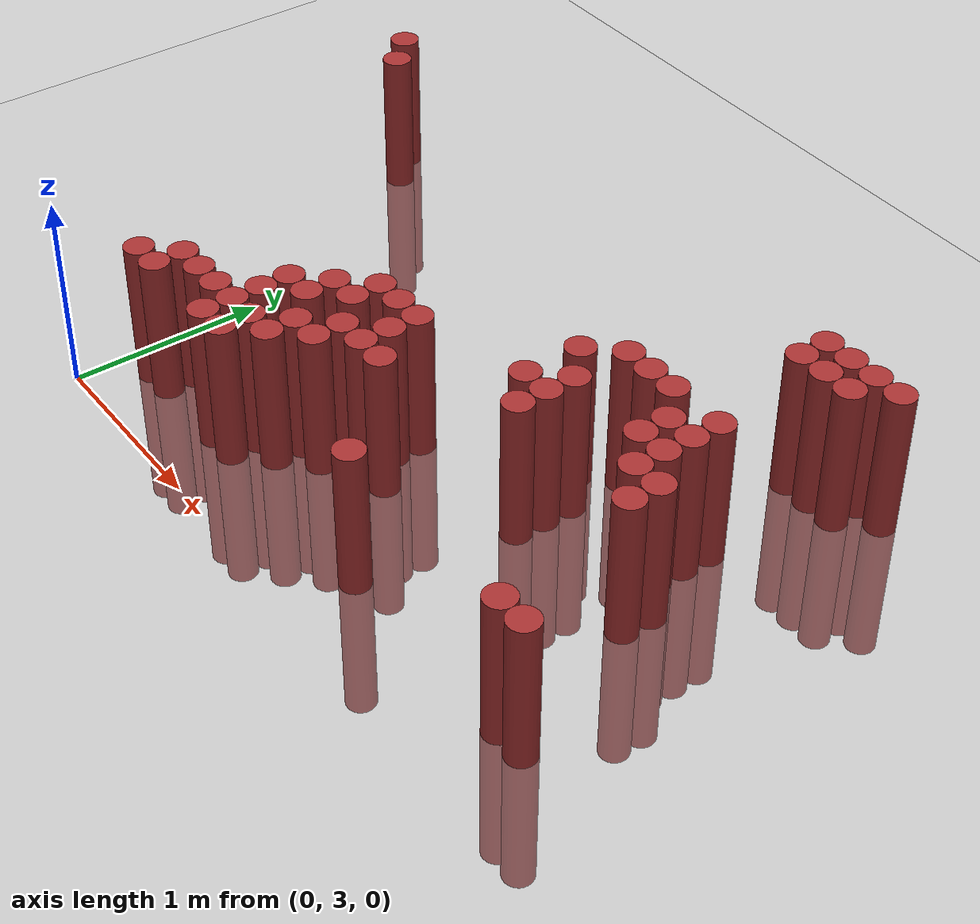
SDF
<sdf version="1.6">
 <world name="default">
  <model name="ground_plane">
   <static>1</static>
   <link name="link">
    <collision name="collision">
     <geometry><plane><normal>0 0 1</normal><size>100 100</size></plane></geometry>
     <surface><friction><ode><mu>100</mu><mu2>50</mu2></ode></friction></surface>
    </collision>
    <visual name="visual">
     <cast_shadows>0</cast_shadows>
     <geometry><plane><normal>0 0 1</normal><size>100 100</size></plane></geometry>
     <material>
      <script><uri>file://media/materials/scripts/gazebo.material</uri><name>Gazebo/Grey</name></script>
     </material>
    </visual>
   </link>
  </model>
  <model name="unit_cylinder_385">
   <static>1</static>
   <pose>-0.725000 5.425000 0.000000 0.000000 0.000000 0.000000</pose>
   <link name="link">
    <inertial>
     <mass>1</mass>
     <inertia><ixx>0.145833</ixx><ixy>0</ixy><ixz>0</ixz><iyy>0.145833</iyy><iyz>0</iyz><izz>0.125</izz></inertia>
    </inertial>
    <collision name="collision">
     <geometry><cylinder><radius>0.075000</radius><length>1.5</length></cylinder></geometry>
    </collision>
    <visual name="visual">
     <geometry><cylinder><radius>0.075000</radius><length>1.5</length></cylinder></geometry>
     <material>
      <ambient>0.648000 0.192000 0.192000 1</ambient>
      <diffuse>0.648000 0.192000 0.192000 1</diffuse>
     </material>
     <material>
      <script><name>Gazebo/Grey</name><uri>file://media/materials/scripts/gazebo.material</uri></script>
     </material>
    </visual>
   </link>
  </model>
  <model name="unit_cylinder_386">
   <static>1</static>
   <pose>-0.575000 5.275000 0.000000 0.000000 0.000000 0.000000</pose>
   <link name="link">
    <inertial>
     <mass>1</mass>
     <inertia><ixx>0.145833</ixx><ixy>0</ixy><ixz>0</ixz><iyy>0.145833</iyy><iyz>0</iyz><izz>0.125</izz></inertia>
    </inertial>
    <collision name="collision">
     <geometry><cylinder><radius>0.075000</radius><length>1.5</length></cylinder></geometry>
    </collision>
    <visual name="visual">
     <geometry><cylinder><radius>0.075000</radius><length>1.5</length></cylinder></geometry>
     <material>
      <ambient>0.648000 0.192000 0.192000 1</ambient>
      <diffuse>0.648000 0.192000 0.192000 1</diffuse>
     </material>
     <material>
      <script><name>Gazebo/Grey</name><uri>file://media/materials/scripts/gazebo.material</uri></script>
     </material>
    </visual>
   </link>
  </model>
  <model name="unit_cylinder_403">
   <static>1</static>
   <pose>0.175000 3.325000 0.000000 0.000000 0.000000 0.000000</pose>
   <link name="link">
    <inertial>
     <mass>1</mass>
     <inertia><ixx>0.145833</ixx><ixy>0</ixy><ixz>0</ixz><iyy>0.145833</iyy><iyz>0</iyz><izz>0.125</izz></inertia>
    </inertial>
    <collision name="collision">
     <geometry><cylinder><radius>0.075000</radius><length>1.5</length></cylinder></geometry>
    </collision>
    <visual name="visual">
     <geometry><cylinder><radius>0.075000</radius><length>1.5</length></cylinder></geometry>
     <material>
      <ambient>0.648000 0.192000 0.192000 1</ambient>
      <diffuse>0.648000 0.192000 0.192000 1</diffuse>
     </material>
     <material>
      <script><name>Gazebo/Grey</name><uri>file://media/materials/scripts/gazebo.material</uri></script>
     </material>
    </visual>
   </link>
  </model>
  <model name="unit_cylinder_407">
   <static>1</static>
   <pose>0.325000 3.325000 0.000000 0.000000 0.000000 0.000000</pose>
   <link name="link">
    <inertial>
     <mass>1</mass>
     <inertia><ixx>0.145833</ixx><ixy>0</ixy><ixz>0</ixz><iyy>0.145833</iyy><iyz>0</iyz><izz>0.125</izz></inertia>
    </inertial>
    <collision name="collision">
     <geometry><cylinder><radius>0.075000</radius><length>1.5</length></cylinder></geometry>
    </collision>
    <visual name="visual">
     <geometry><cylinder><radius>0.075000</radius><length>1.5</length></cylinder></geometry>
     <material>
      <ambient>0.648000 0.192000 0.192000 1</ambient>
      <diffuse>0.648000 0.192000 0.192000 1</diffuse>
     </material>
     <material>
      <script><name>Gazebo/Grey</name><uri>file://media/materials/scripts/gazebo.material</uri></script>
     </material>
    </visual>
   </link>
  </model>
  <model name="unit_cylinder_408">
   <static>1</static>
   <pose>0.325000 3.475000 0.000000 0.000000 0.000000 0.000000</pose>
   <link name="link">
    <inertial>
     <mass>1</mass>
     <inertia><ixx>0.145833</ixx><ixy>0</ixy><ixz>0</ixz><iyy>0.145833</iyy><iyz>0</iyz><izz>0.125</izz></inertia>
    </inertial>
    <collision name="collision">
     <geometry><cylinder><radius>0.075000</radius><length>1.5</length></cylinder></geometry>
    </collision>
    <visual name="visual">
     <geometry><cylinder><radius>0.075000</radius><length>1.5</length></cylinder></geometry>
     <material>
      <ambient>0.648000 0.192000 0.192000 1</ambient>
      <diffuse>0.648000 0.192000 0.192000 1</diffuse>
     </material>
     <material>
      <script><name>Gazebo/Grey</name><uri>file://media/materials/scripts/gazebo.material</uri></script>
     </material>
    </visual>
   </link>
  </model>
  <model name="unit_cylinder_413">
   <static>1</static>
   <pose>0.475000 3.475000 0.000000 0.000000 0.000000 0.000000</pose>
   <link name="link">
    <inertial>
     <mass>1</mass>
     <inertia><ixx>0.145833</ixx><ixy>0</ixy><ixz>0</ixz><iyy>0.145833</iyy><iyz>0</iyz><izz>0.125</izz></inertia>
    </inertial>
    <collision name="collision">
     <geometry><cylinder><radius>0.075000</radius><length>1.5</length></cylinder></geometry>
    </collision>
    <visual name="visual">
     <geometry><cylinder><radius>0.075000</radius><length>1.5</length></cylinder></geometry>
     <material>
      <ambient>0.648000 0.192000 0.192000 1</ambient>
      <diffuse>0.648000 0.192000 0.192000 1</diffuse>
     </material>
     <material>
      <script><name>Gazebo/Grey</name><uri>file://media/materials/scripts/gazebo.material</uri></script>
     </material>
    </visual>
   </link>
  </model>
  <model name="unit_cylinder_420">
   <static>1</static>
   <pose>0.625000 3.475000 0.000000 0.000000 0.000000 0.000000</pose>
   <link name="link">
    <inertial>
     <mass>1</mass>
     <inertia><ixx>0.145833</ixx><ixy>0</ixy><ixz>0</ixz><iyy>0.145833</iyy><iyz>0</iyz><izz>0.125</izz></inertia>
    </inertial>
    <collision name="collision">
     <geometry><cylinder><radius>0.075000</radius><length>1.5</length></cylinder></geometry>
    </collision>
    <visual name="visual">
     <geometry><cylinder><radius>0.075000</radius><length>1.5</length></cylinder></geometry>
     <material>
      <ambient>0.648000 0.192000 0.192000 1</ambient>
      <diffuse>0.648000 0.192000 0.192000 1</diffuse>
     </material>
     <material>
      <script><name>Gazebo/Grey</name><uri>file://media/materials/scripts/gazebo.material</uri></script>
     </material>
    </visual>
   </link>
  </model>
  <model name="unit_cylinder_429">
   <static>1</static>
   <pose>0.775000 3.325000 0.000000 0.000000 0.000000 0.000000</pose>
   <link name="link">
    <inertial>
     <mass>1</mass>
     <inertia><ixx>0.145833</ixx><ixy>0</ixy><ixz>0</ixz><iyy>0.145833</iyy><iyz>0</iyz><izz>0.125</izz></inertia>
    </inertial>
    <collision name="collision">
     <geometry><cylinder><radius>0.075000</radius><length>1.5</length></cylinder></geometry>
    </collision>
    <visual name="visual">
     <geometry><cylinder><radius>0.075000</radius><length>1.5</length></cylinder></geometry>
     <material>
      <ambient>0.648000 0.192000 0.192000 1</ambient>
      <diffuse>0.648000 0.192000 0.192000 1</diffuse>
     </material>
     <material>
      <script><name>Gazebo/Grey</name><uri>file://media/materials/scripts/gazebo.material</uri></script>
     </material>
    </visual>
   </link>
  </model>
  <model name="unit_cylinder_430">
   <static>1</static>
   <pose>0.775000 3.475000 0.000000 0.000000 0.000000 0.000000</pose>
   <link name="link">
    <inertial>
     <mass>1</mass>
     <inertia><ixx>0.145833</ixx><ixy>0</ixy><ixz>0</ixz><iyy>0.145833</iyy><iyz>0</iyz><izz>0.125</izz></inertia>
    </inertial>
    <collision name="collision">
     <geometry><cylinder><radius>0.075000</radius><length>1.5</length></cylinder></geometry>
    </collision>
    <visual name="visual">
     <geometry><cylinder><radius>0.075000</radius><length>1.5</length></cylinder></geometry>
     <material>
      <ambient>0.648000 0.192000 0.192000 1</ambient>
      <diffuse>0.648000 0.192000 0.192000 1</diffuse>
     </material>
     <material>
      <script><name>Gazebo/Grey</name><uri>file://media/materials/scripts/gazebo.material</uri></script>
     </material>
    </visual>
   </link>
  </model>
  <model name="unit_cylinder_431">
   <static>1</static>
   <pose>0.775000 3.625000 0.000000 0.000000 0.000000 0.000000</pose>
   <link name="link">
    <inertial>
     <mass>1</mass>
     <inertia><ixx>0.145833</ixx><ixy>0</ixy><ixz>0</ixz><iyy>0.145833</iyy><iyz>0</iyz><izz>0.125</izz></inertia>
    </inertial>
    <collision name="collision">
     <geometry><cylinder><radius>0.075000</radius><length>1.5</length></cylinder></geometry>
    </collision>
    <visual name="visual">
     <geometry><cylinder><radius>0.075000</radius><length>1.5</length></cylinder></geometry>
     <material>
      <ambient>0.648000 0.192000 0.192000 1</ambient>
      <diffuse>0.648000 0.192000 0.192000 1</diffuse>
     </material>
     <material>
      <script><name>Gazebo/Grey</name><uri>file://media/materials/scripts/gazebo.material</uri></script>
     </material>
    </visual>
   </link>
  </model>
  <model name="unit_cylinder_432">
   <static>1</static>
   <pose>0.775000 3.775000 0.000000 0.000000 0.000000 0.000000</pose>
   <link name="link">
    <inertial>
     <mass>1</mass>
     <inertia><ixx>0.145833</ixx><ixy>0</ixy><ixz>0</ixz><iyy>0.145833</iyy><iyz>0</iyz><izz>0.125</izz></inertia>
    </inertial>
    <collision name="collision">
     <geometry><cylinder><radius>0.075000</radius><length>1.5</length></cylinder></geometry>
    </collision>
    <visual name="visual">
     <geometry><cylinder><radius>0.075000</radius><length>1.5</length></cylinder></geometry>
     <material>
      <ambient>0.648000 0.192000 0.192000 1</ambient>
      <diffuse>0.648000 0.192000 0.192000 1</diffuse>
     </material>
     <material>
      <script><name>Gazebo/Grey</name><uri>file://media/materials/scripts/gazebo.material</uri></script>
     </material>
    </visual>
   </link>
  </model>
  <model name="unit_cylinder_440">
   <static>1</static>
   <pose>0.925000 3.325000 0.000000 0.000000 0.000000 0.000000</pose>
   <link name="link">
    <inertial>
     <mass>1</mass>
     <inertia><ixx>0.145833</ixx><ixy>0</ixy><ixz>0</ixz><iyy>0.145833</iyy><iyz>0</iyz><izz>0.125</izz></inertia>
    </inertial>
    <collision name="collision">
     <geometry><cylinder><radius>0.075000</radius><length>1.5</length></cylinder></geometry>
    </collision>
    <visual name="visual">
     <geometry><cylinder><radius>0.075000</radius><length>1.5</length></cylinder></geometry>
     <material>
      <ambient>0.648000 0.192000 0.192000 1</ambient>
      <diffuse>0.648000 0.192000 0.192000 1</diffuse>
     </material>
     <material>
      <script><name>Gazebo/Grey</name><uri>file://media/materials/scripts/gazebo.material</uri></script>
     </material>
    </visual>
   </link>
  </model>
  <model name="unit_cylinder_441">
   <static>1</static>
   <pose>0.925000 3.475000 0.000000 0.000000 0.000000 0.000000</pose>
   <link name="link">
    <inertial>
     <mass>1</mass>
     <inertia><ixx>0.145833</ixx><ixy>0</ixy><ixz>0</ixz><iyy>0.145833</iyy><iyz>0</iyz><izz>0.125</izz></inertia>
    </inertial>
    <collision name="collision">
     <geometry><cylinder><radius>0.075000</radius><length>1.5</length></cylinder></geometry>
    </collision>
    <visual name="visual">
     <geometry><cylinder><radius>0.075000</radius><length>1.5</length></cylinder></geometry>
     <material>
      <ambient>0.648000 0.192000 0.192000 1</ambient>
      <diffuse>0.648000 0.192000 0.192000 1</diffuse>
     </material>
     <material>
      <script><name>Gazebo/Grey</name><uri>file://media/materials/scripts/gazebo.material</uri></script>
     </material>
    </visual>
   </link>
  </model>
  <model name="unit_cylinder_442">
   <static>1</static>
   <pose>0.925000 3.775000 0.000000 0.000000 0.000000 0.000000</pose>
   <link name="link">
    <inertial>
     <mass>1</mass>
     <inertia><ixx>0.145833</ixx><ixy>0</ixy><ixz>0</ixz><iyy>0.145833</iyy><iyz>0</iyz><izz>0.125</izz></inertia>
    </inertial>
    <collision name="collision">
     <geometry><cylinder><radius>0.075000</radius><length>1.5</length></cylinder></geometry>
    </collision>
    <visual name="visual">
     <geometry><cylinder><radius>0.075000</radius><length>1.5</length></cylinder></geometry>
     <material>
      <ambient>0.648000 0.192000 0.192000 1</ambient>
      <diffuse>0.648000 0.192000 0.192000 1</diffuse>
     </material>
     <material>
      <script><name>Gazebo/Grey</name><uri>file://media/materials/scripts/gazebo.material</uri></script>
     </material>
    </visual>
   </link>
  </model>
  <model name="unit_cylinder_443">
   <static>1</static>
   <pose>0.925000 3.925000 0.000000 0.000000 0.000000 0.000000</pose>
   <link name="link">
    <inertial>
     <mass>1</mass>
     <inertia><ixx>0.145833</ixx><ixy>0</ixy><ixz>0</ixz><iyy>0.145833</iyy><iyz>0</iyz><izz>0.125</izz></inertia>
    </inertial>
    <collision name="collision">
     <geometry><cylinder><radius>0.075000</radius><length>1.5</length></cylinder></geometry>
    </collision>
    <visual name="visual">
     <geometry><cylinder><radius>0.075000</radius><length>1.5</length></cylinder></geometry>
     <material>
      <ambient>0.648000 0.192000 0.192000 1</ambient>
      <diffuse>0.648000 0.192000 0.192000 1</diffuse>
     </material>
     <material>
      <script><name>Gazebo/Grey</name><uri>file://media/materials/scripts/gazebo.material</uri></script>
     </material>
    </visual>
   </link>
  </model>
  <model name="unit_cylinder_451">
   <static>1</static>
   <pose>1.075000 3.475000 0.000000 0.000000 0.000000 0.000000</pose>
   <link name="link">
    <inertial>
     <mass>1</mass>
     <inertia><ixx>0.145833</ixx><ixy>0</ixy><ixz>0</ixz><iyy>0.145833</iyy><iyz>0</iyz><izz>0.125</izz></inertia>
    </inertial>
    <collision name="collision">
     <geometry><cylinder><radius>0.075000</radius><length>1.5</length></cylinder></geometry>
    </collision>
    <visual name="visual">
     <geometry><cylinder><radius>0.075000</radius><length>1.5</length></cylinder></geometry>
     <material>
      <ambient>0.648000 0.192000 0.192000 1</ambient>
      <diffuse>0.648000 0.192000 0.192000 1</diffuse>
     </material>
     <material>
      <script><name>Gazebo/Grey</name><uri>file://media/materials/scripts/gazebo.material</uri></script>
     </material>
    </visual>
   </link>
  </model>
  <model name="unit_cylinder_452">
   <static>1</static>
   <pose>1.075000 3.625000 0.000000 0.000000 0.000000 0.000000</pose>
   <link name="link">
    <inertial>
     <mass>1</mass>
     <inertia><ixx>0.145833</ixx><ixy>0</ixy><ixz>0</ixz><iyy>0.145833</iyy><iyz>0</iyz><izz>0.125</izz></inertia>
    </inertial>
    <collision name="collision">
     <geometry><cylinder><radius>0.075000</radius><length>1.5</length></cylinder></geometry>
    </collision>
    <visual name="visual">
     <geometry><cylinder><radius>0.075000</radius><length>1.5</length></cylinder></geometry>
     <material>
      <ambient>0.648000 0.192000 0.192000 1</ambient>
      <diffuse>0.648000 0.192000 0.192000 1</diffuse>
     </material>
     <material>
      <script><name>Gazebo/Grey</name><uri>file://media/materials/scripts/gazebo.material</uri></script>
     </material>
    </visual>
   </link>
  </model>
  <model name="unit_cylinder_453">
   <static>1</static>
   <pose>1.075000 3.925000 0.000000 0.000000 0.000000 0.000000</pose>
   <link name="link">
    <inertial>
     <mass>1</mass>
     <inertia><ixx>0.145833</ixx><ixy>0</ixy><ixz>0</ixz><iyy>0.145833</iyy><iyz>0</iyz><izz>0.125</izz></inertia>
    </inertial>
    <collision name="collision">
     <geometry><cylinder><radius>0.075000</radius><length>1.5</length></cylinder></geometry>
    </collision>
    <visual name="visual">
     <geometry><cylinder><radius>0.075000</radius><length>1.5</length></cylinder></geometry>
     <material>
      <ambient>0.648000 0.192000 0.192000 1</ambient>
      <diffuse>0.648000 0.192000 0.192000 1</diffuse>
     </material>
     <material>
      <script><name>Gazebo/Grey</name><uri>file://media/materials/scripts/gazebo.material</uri></script>
     </material>
    </visual>
   </link>
  </model>
  <model name="unit_cylinder_454">
   <static>1</static>
   <pose>1.075000 4.075000 0.000000 0.000000 0.000000 0.000000</pose>
   <link name="link">
    <inertial>
     <mass>1</mass>
     <inertia><ixx>0.145833</ixx><ixy>0</ixy><ixz>0</ixz><iyy>0.145833</iyy><iyz>0</iyz><izz>0.125</izz></inertia>
    </inertial>
    <collision name="collision">
     <geometry><cylinder><radius>0.075000</radius><length>1.5</length></cylinder></geometry>
    </collision>
    <visual name="visual">
     <geometry><cylinder><radius>0.075000</radius><length>1.5</length></cylinder></geometry>
     <material>
      <ambient>0.648000 0.192000 0.192000 1</ambient>
      <diffuse>0.648000 0.192000 0.192000 1</diffuse>
     </material>
     <material>
      <script><name>Gazebo/Grey</name><uri>file://media/materials/scripts/gazebo.material</uri></script>
     </material>
    </visual>
   </link>
  </model>
  <model name="unit_cylinder_461">
   <static>1</static>
   <pose>1.225000 3.625000 0.000000 0.000000 0.000000 0.000000</pose>
   <link name="link">
    <inertial>
     <mass>1</mass>
     <inertia><ixx>0.145833</ixx><ixy>0</ixy><ixz>0</ixz><iyy>0.145833</iyy><iyz>0</iyz><izz>0.125</izz></inertia>
    </inertial>
    <collision name="collision">
     <geometry><cylinder><radius>0.075000</radius><length>1.5</length></cylinder></geometry>
    </collision>
    <visual name="visual">
     <geometry><cylinder><radius>0.075000</radius><length>1.5</length></cylinder></geometry>
     <material>
      <ambient>0.648000 0.192000 0.192000 1</ambient>
      <diffuse>0.648000 0.192000 0.192000 1</diffuse>
     </material>
     <material>
      <script><name>Gazebo/Grey</name><uri>file://media/materials/scripts/gazebo.material</uri></script>
     </material>
    </visual>
   </link>
  </model>
  <model name="unit_cylinder_462">
   <static>1</static>
   <pose>1.225000 3.775000 0.000000 0.000000 0.000000 0.000000</pose>
   <link name="link">
    <inertial>
     <mass>1</mass>
     <inertia><ixx>0.145833</ixx><ixy>0</ixy><ixz>0</ixz><iyy>0.145833</iyy><iyz>0</iyz><izz>0.125</izz></inertia>
    </inertial>
    <collision name="collision">
     <geometry><cylinder><radius>0.075000</radius><length>1.5</length></cylinder></geometry>
    </collision>
    <visual name="visual">
     <geometry><cylinder><radius>0.075000</radius><length>1.5</length></cylinder></geometry>
     <material>
      <ambient>0.648000 0.192000 0.192000 1</ambient>
      <diffuse>0.648000 0.192000 0.192000 1</diffuse>
     </material>
     <material>
      <script><name>Gazebo/Grey</name><uri>file://media/materials/scripts/gazebo.material</uri></script>
     </material>
    </visual>
   </link>
  </model>
  <model name="unit_cylinder_463">
   <static>1</static>
   <pose>1.225000 4.075000 0.000000 0.000000 0.000000 0.000000</pose>
   <link name="link">
    <inertial>
     <mass>1</mass>
     <inertia><ixx>0.145833</ixx><ixy>0</ixy><ixz>0</ixz><iyy>0.145833</iyy><iyz>0</iyz><izz>0.125</izz></inertia>
    </inertial>
    <collision name="collision">
     <geometry><cylinder><radius>0.075000</radius><length>1.5</length></cylinder></geometry>
    </collision>
    <visual name="visual">
     <geometry><cylinder><radius>0.075000</radius><length>1.5</length></cylinder></geometry>
     <material>
      <ambient>0.648000 0.192000 0.192000 1</ambient>
      <diffuse>0.648000 0.192000 0.192000 1</diffuse>
     </material>
     <material>
      <script><name>Gazebo/Grey</name><uri>file://media/materials/scripts/gazebo.material</uri></script>
     </material>
    </visual>
   </link>
  </model>
  <model name="unit_cylinder_467">
   <static>1</static>
   <pose>1.375000 3.775000 0.000000 0.000000 0.000000 0.000000</pose>
   <link name="link">
    <inertial>
     <mass>1</mass>
     <inertia><ixx>0.145833</ixx><ixy>0</ixy><ixz>0</ixz><iyy>0.145833</iyy><iyz>0</iyz><izz>0.125</izz></inertia>
    </inertial>
    <collision name="collision">
     <geometry><cylinder><radius>0.075000</radius><length>1.5</length></cylinder></geometry>
    </collision>
    <visual name="visual">
     <geometry><cylinder><radius>0.075000</radius><length>1.5</length></cylinder></geometry>
     <material>
      <ambient>0.648000 0.192000 0.192000 1</ambient>
      <diffuse>0.648000 0.192000 0.192000 1</diffuse>
     </material>
     <material>
      <script><name>Gazebo/Grey</name><uri>file://media/materials/scripts/gazebo.material</uri></script>
     </material>
    </visual>
   </link>
  </model>
  <model name="unit_cylinder_468">
   <static>1</static>
   <pose>1.375000 3.925000 0.000000 0.000000 0.000000 0.000000</pose>
   <link name="link">
    <inertial>
     <mass>1</mass>
     <inertia><ixx>0.145833</ixx><ixy>0</ixy><ixz>0</ixz><iyy>0.145833</iyy><iyz>0</iyz><izz>0.125</izz></inertia>
    </inertial>
    <collision name="collision">
     <geometry><cylinder><radius>0.075000</radius><length>1.5</length></cylinder></geometry>
    </collision>
    <visual name="visual">
     <geometry><cylinder><radius>0.075000</radius><length>1.5</length></cylinder></geometry>
     <material>
      <ambient>0.648000 0.192000 0.192000 1</ambient>
      <diffuse>0.648000 0.192000 0.192000 1</diffuse>
     </material>
     <material>
      <script><name>Gazebo/Grey</name><uri>file://media/materials/scripts/gazebo.material</uri></script>
     </material>
    </visual>
   </link>
  </model>
  <model name="unit_cylinder_469">
   <static>1</static>
   <pose>1.375000 4.075000 0.000000 0.000000 0.000000 0.000000</pose>
   <link name="link">
    <inertial>
     <mass>1</mass>
     <inertia><ixx>0.145833</ixx><ixy>0</ixy><ixz>0</ixz><iyy>0.145833</iyy><iyz>0</iyz><izz>0.125</izz></inertia>
    </inertial>
    <collision name="collision">
     <geometry><cylinder><radius>0.075000</radius><length>1.5</length></cylinder></geometry>
    </collision>
    <visual name="visual">
     <geometry><cylinder><radius>0.075000</radius><length>1.5</length></cylinder></geometry>
     <material>
      <ambient>0.648000 0.192000 0.192000 1</ambient>
      <diffuse>0.648000 0.192000 0.192000 1</diffuse>
     </material>
     <material>
      <script><name>Gazebo/Grey</name><uri>file://media/materials/scripts/gazebo.material</uri></script>
     </material>
    </visual>
   </link>
  </model>
  <model name="unit_cylinder_477">
   <static>1</static>
   <pose>1.525000 3.775000 0.000000 0.000000 0.000000 0.000000</pose>
   <link name="link">
    <inertial>
     <mass>1</mass>
     <inertia><ixx>0.145833</ixx><ixy>0</ixy><ixz>0</ixz><iyy>0.145833</iyy><iyz>0</iyz><izz>0.125</izz></inertia>
    </inertial>
    <collision name="collision">
     <geometry><cylinder><radius>0.075000</radius><length>1.5</length></cylinder></geometry>
    </collision>
    <visual name="visual">
     <geometry><cylinder><radius>0.075000</radius><length>1.5</length></cylinder></geometry>
     <material>
      <ambient>0.648000 0.192000 0.192000 1</ambient>
      <diffuse>0.648000 0.192000 0.192000 1</diffuse>
     </material>
     <material>
      <script><name>Gazebo/Grey</name><uri>file://media/materials/scripts/gazebo.material</uri></script>
     </material>
    </visual>
   </link>
  </model>
  <model name="unit_cylinder_494">
   <static>1</static>
   <pose>1.975000 3.325000 0.000000 0.000000 0.000000 0.000000</pose>
   <link name="link">
    <inertial>
     <mass>1</mass>
     <inertia><ixx>0.145833</ixx><ixy>0</ixy><ixz>0</ixz><iyy>0.145833</iyy><iyz>0</iyz><izz>0.125</izz></inertia>
    </inertial>
    <collision name="collision">
     <geometry><cylinder><radius>0.075000</radius><length>1.5</length></cylinder></geometry>
    </collision>
    <visual name="visual">
     <geometry><cylinder><radius>0.075000</radius><length>1.5</length></cylinder></geometry>
     <material>
      <ambient>0.648000 0.192000 0.192000 1</ambient>
      <diffuse>0.648000 0.192000 0.192000 1</diffuse>
     </material>
     <material>
      <script><name>Gazebo/Grey</name><uri>file://media/materials/scripts/gazebo.material</uri></script>
     </material>
    </visual>
   </link>
  </model>
  <model name="unit_cylinder_495">
   <static>1</static>
   <pose>1.975000 4.225000 0.000000 0.000000 0.000000 0.000000</pose>
   <link name="link">
    <inertial>
     <mass>1</mass>
     <inertia><ixx>0.145833</ixx><ixy>0</ixy><ixz>0</ixz><iyy>0.145833</iyy><iyz>0</iyz><izz>0.125</izz></inertia>
    </inertial>
    <collision name="collision">
     <geometry><cylinder><radius>0.075000</radius><length>1.5</length></cylinder></geometry>
    </collision>
    <visual name="visual">
     <geometry><cylinder><radius>0.075000</radius><length>1.5</length></cylinder></geometry>
     <material>
      <ambient>0.648000 0.192000 0.192000 1</ambient>
      <diffuse>0.648000 0.192000 0.192000 1</diffuse>
     </material>
     <material>
      <script><name>Gazebo/Grey</name><uri>file://media/materials/scripts/gazebo.material</uri></script>
     </material>
    </visual>
   </link>
  </model>
  <model name="unit_cylinder_496">
   <static>1</static>
   <pose>1.975000 4.525000 0.000000 0.000000 0.000000 0.000000</pose>
   <link name="link">
    <inertial>
     <mass>1</mass>
     <inertia><ixx>0.145833</ixx><ixy>0</ixy><ixz>0</ixz><iyy>0.145833</iyy><iyz>0</iyz><izz>0.125</izz></inertia>
    </inertial>
    <collision name="collision">
     <geometry><cylinder><radius>0.075000</radius><length>1.5</length></cylinder></geometry>
    </collision>
    <visual name="visual">
     <geometry><cylinder><radius>0.075000</radius><length>1.5</length></cylinder></geometry>
     <material>
      <ambient>0.648000 0.192000 0.192000 1</ambient>
      <diffuse>0.648000 0.192000 0.192000 1</diffuse>
     </material>
     <material>
      <script><name>Gazebo/Grey</name><uri>file://media/materials/scripts/gazebo.material</uri></script>
     </material>
    </visual>
   </link>
  </model>
  <model name="unit_cylinder_502">
   <static>1</static>
   <pose>2.125000 4.075000 0.000000 0.000000 0.000000 0.000000</pose>
   <link name="link">
    <inertial>
     <mass>1</mass>
     <inertia><ixx>0.145833</ixx><ixy>0</ixy><ixz>0</ixz><iyy>0.145833</iyy><iyz>0</iyz><izz>0.125</izz></inertia>
    </inertial>
    <collision name="collision">
     <geometry><cylinder><radius>0.075000</radius><length>1.5</length></cylinder></geometry>
    </collision>
    <visual name="visual">
     <geometry><cylinder><radius>0.075000</radius><length>1.5</length></cylinder></geometry>
     <material>
      <ambient>0.648000 0.192000 0.192000 1</ambient>
      <diffuse>0.648000 0.192000 0.192000 1</diffuse>
     </material>
     <material>
      <script><name>Gazebo/Grey</name><uri>file://media/materials/scripts/gazebo.material</uri></script>
     </material>
    </visual>
   </link>
  </model>
  <model name="unit_cylinder_503">
   <static>1</static>
   <pose>2.125000 4.225000 0.000000 0.000000 0.000000 0.000000</pose>
   <link name="link">
    <inertial>
     <mass>1</mass>
     <inertia><ixx>0.145833</ixx><ixy>0</ixy><ixz>0</ixz><iyy>0.145833</iyy><iyz>0</iyz><izz>0.125</izz></inertia>
    </inertial>
    <collision name="collision">
     <geometry><cylinder><radius>0.075000</radius><length>1.5</length></cylinder></geometry>
    </collision>
    <visual name="visual">
     <geometry><cylinder><radius>0.075000</radius><length>1.5</length></cylinder></geometry>
     <material>
      <ambient>0.648000 0.192000 0.192000 1</ambient>
      <diffuse>0.648000 0.192000 0.192000 1</diffuse>
     </material>
     <material>
      <script><name>Gazebo/Grey</name><uri>file://media/materials/scripts/gazebo.material</uri></script>
     </material>
    </visual>
   </link>
  </model>
  <model name="unit_cylinder_504">
   <static>1</static>
   <pose>2.125000 4.375000 0.000000 0.000000 0.000000 0.000000</pose>
   <link name="link">
    <inertial>
     <mass>1</mass>
     <inertia><ixx>0.145833</ixx><ixy>0</ixy><ixz>0</ixz><iyy>0.145833</iyy><iyz>0</iyz><izz>0.125</izz></inertia>
    </inertial>
    <collision name="collision">
     <geometry><cylinder><radius>0.075000</radius><length>1.5</length></cylinder></geometry>
    </collision>
    <visual name="visual">
     <geometry><cylinder><radius>0.075000</radius><length>1.5</length></cylinder></geometry>
     <material>
      <ambient>0.648000 0.192000 0.192000 1</ambient>
      <diffuse>0.648000 0.192000 0.192000 1</diffuse>
     </material>
     <material>
      <script><name>Gazebo/Grey</name><uri>file://media/materials/scripts/gazebo.material</uri></script>
     </material>
    </visual>
   </link>
  </model>
  <model name="unit_cylinder_505">
   <static>1</static>
   <pose>2.125000 4.675000 0.000000 0.000000 0.000000 0.000000</pose>
   <link name="link">
    <inertial>
     <mass>1</mass>
     <inertia><ixx>0.145833</ixx><ixy>0</ixy><ixz>0</ixz><iyy>0.145833</iyy><iyz>0</iyz><izz>0.125</izz></inertia>
    </inertial>
    <collision name="collision">
     <geometry><cylinder><radius>0.075000</radius><length>1.5</length></cylinder></geometry>
    </collision>
    <visual name="visual">
     <geometry><cylinder><radius>0.075000</radius><length>1.5</length></cylinder></geometry>
     <material>
      <ambient>0.648000 0.192000 0.192000 1</ambient>
      <diffuse>0.648000 0.192000 0.192000 1</diffuse>
     </material>
     <material>
      <script><name>Gazebo/Grey</name><uri>file://media/materials/scripts/gazebo.material</uri></script>
     </material>
    </visual>
   </link>
  </model>
  <model name="unit_cylinder_512">
   <static>1</static>
   <pose>2.275000 4.675000 0.000000 0.000000 0.000000 0.000000</pose>
   <link name="link">
    <inertial>
     <mass>1</mass>
     <inertia><ixx>0.145833</ixx><ixy>0</ixy><ixz>0</ixz><iyy>0.145833</iyy><iyz>0</iyz><izz>0.125</izz></inertia>
    </inertial>
    <collision name="collision">
     <geometry><cylinder><radius>0.075000</radius><length>1.5</length></cylinder></geometry>
    </collision>
    <visual name="visual">
     <geometry><cylinder><radius>0.075000</radius><length>1.5</length></cylinder></geometry>
     <material>
      <ambient>0.648000 0.192000 0.192000 1</ambient>
      <diffuse>0.648000 0.192000 0.192000 1</diffuse>
     </material>
     <material>
      <script><name>Gazebo/Grey</name><uri>file://media/materials/scripts/gazebo.material</uri></script>
     </material>
    </visual>
   </link>
  </model>
  <model name="unit_cylinder_518">
   <static>1</static>
   <pose>2.425000 4.675000 0.000000 0.000000 0.000000 0.000000</pose>
   <link name="link">
    <inertial>
     <mass>1</mass>
     <inertia><ixx>0.145833</ixx><ixy>0</ixy><ixz>0</ixz><iyy>0.145833</iyy><iyz>0</iyz><izz>0.125</izz></inertia>
    </inertial>
    <collision name="collision">
     <geometry><cylinder><radius>0.075000</radius><length>1.5</length></cylinder></geometry>
    </collision>
    <visual name="visual">
     <geometry><cylinder><radius>0.075000</radius><length>1.5</length></cylinder></geometry>
     <material>
      <ambient>0.648000 0.192000 0.192000 1</ambient>
      <diffuse>0.648000 0.192000 0.192000 1</diffuse>
     </material>
     <material>
      <script><name>Gazebo/Grey</name><uri>file://media/materials/scripts/gazebo.material</uri></script>
     </material>
    </visual>
   </link>
  </model>
  <model name="unit_cylinder_526">
   <static>1</static>
   <pose>2.575000 4.375000 0.000000 0.000000 0.000000 0.000000</pose>
   <link name="link">
    <inertial>
     <mass>1</mass>
     <inertia><ixx>0.145833</ixx><ixy>0</ixy><ixz>0</ixz><iyy>0.145833</iyy><iyz>0</iyz><izz>0.125</izz></inertia>
    </inertial>
    <collision name="collision">
     <geometry><cylinder><radius>0.075000</radius><length>1.5</length></cylinder></geometry>
    </collision>
    <visual name="visual">
     <geometry><cylinder><radius>0.075000</radius><length>1.5</length></cylinder></geometry>
     <material>
      <ambient>0.648000 0.192000 0.192000 1</ambient>
      <diffuse>0.648000 0.192000 0.192000 1</diffuse>
     </material>
     <material>
      <script><name>Gazebo/Grey</name><uri>file://media/materials/scripts/gazebo.material</uri></script>
     </material>
    </visual>
   </link>
  </model>
  <model name="unit_cylinder_527">
   <static>1</static>
   <pose>2.575000 4.525000 0.000000 0.000000 0.000000 0.000000</pose>
   <link name="link">
    <inertial>
     <mass>1</mass>
     <inertia><ixx>0.145833</ixx><ixy>0</ixy><ixz>0</ixz><iyy>0.145833</iyy><iyz>0</iyz><izz>0.125</izz></inertia>
    </inertial>
    <collision name="collision">
     <geometry><cylinder><radius>0.075000</radius><length>1.5</length></cylinder></geometry>
    </collision>
    <visual name="visual">
     <geometry><cylinder><radius>0.075000</radius><length>1.5</length></cylinder></geometry>
     <material>
      <ambient>0.648000 0.192000 0.192000 1</ambient>
      <diffuse>0.648000 0.192000 0.192000 1</diffuse>
     </material>
     <material>
      <script><name>Gazebo/Grey</name><uri>file://media/materials/scripts/gazebo.material</uri></script>
     </material>
    </visual>
   </link>
  </model>
  <model name="unit_cylinder_528">
   <static>1</static>
   <pose>2.575000 5.275000 0.000000 0.000000 0.000000 0.000000</pose>
   <link name="link">
    <inertial>
     <mass>1</mass>
     <inertia><ixx>0.145833</ixx><ixy>0</ixy><ixz>0</ixz><iyy>0.145833</iyy><iyz>0</iyz><izz>0.125</izz></inertia>
    </inertial>
    <collision name="collision">
     <geometry><cylinder><radius>0.075000</radius><length>1.5</length></cylinder></geometry>
    </collision>
    <visual name="visual">
     <geometry><cylinder><radius>0.075000</radius><length>1.5</length></cylinder></geometry>
     <material>
      <ambient>0.648000 0.192000 0.192000 1</ambient>
      <diffuse>0.648000 0.192000 0.192000 1</diffuse>
     </material>
     <material>
      <script><name>Gazebo/Grey</name><uri>file://media/materials/scripts/gazebo.material</uri></script>
     </material>
    </visual>
   </link>
  </model>
  <model name="unit_cylinder_529">
   <static>1</static>
   <pose>2.575000 5.425000 0.000000 0.000000 0.000000 0.000000</pose>
   <link name="link">
    <inertial>
     <mass>1</mass>
     <inertia><ixx>0.145833</ixx><ixy>0</ixy><ixz>0</ixz><iyy>0.145833</iyy><iyz>0</iyz><izz>0.125</izz></inertia>
    </inertial>
    <collision name="collision">
     <geometry><cylinder><radius>0.075000</radius><length>1.5</length></cylinder></geometry>
    </collision>
    <visual name="visual">
     <geometry><cylinder><radius>0.075000</radius><length>1.5</length></cylinder></geometry>
     <material>
      <ambient>0.648000 0.192000 0.192000 1</ambient>
      <diffuse>0.648000 0.192000 0.192000 1</diffuse>
     </material>
     <material>
      <script><name>Gazebo/Grey</name><uri>file://media/materials/scripts/gazebo.material</uri></script>
     </material>
    </visual>
   </link>
  </model>
  <model name="unit_cylinder_538">
   <static>1</static>
   <pose>2.725000 4.225000 0.000000 0.000000 0.000000 0.000000</pose>
   <link name="link">
    <inertial>
     <mass>1</mass>
     <inertia><ixx>0.145833</ixx><ixy>0</ixy><ixz>0</ixz><iyy>0.145833</iyy><iyz>0</iyz><izz>0.125</izz></inertia>
    </inertial>
    <collision name="collision">
     <geometry><cylinder><radius>0.075000</radius><length>1.5</length></cylinder></geometry>
    </collision>
    <visual name="visual">
     <geometry><cylinder><radius>0.075000</radius><length>1.5</length></cylinder></geometry>
     <material>
      <ambient>0.648000 0.192000 0.192000 1</ambient>
      <diffuse>0.648000 0.192000 0.192000 1</diffuse>
     </material>
     <material>
      <script><name>Gazebo/Grey</name><uri>file://media/materials/scripts/gazebo.material</uri></script>
     </material>
    </visual>
   </link>
  </model>
  <model name="unit_cylinder_539">
   <static>1</static>
   <pose>2.725000 4.375000 0.000000 0.000000 0.000000 0.000000</pose>
   <link name="link">
    <inertial>
     <mass>1</mass>
     <inertia><ixx>0.145833</ixx><ixy>0</ixy><ixz>0</ixz><iyy>0.145833</iyy><iyz>0</iyz><izz>0.125</izz></inertia>
    </inertial>
    <collision name="collision">
     <geometry><cylinder><radius>0.075000</radius><length>1.5</length></cylinder></geometry>
    </collision>
    <visual name="visual">
     <geometry><cylinder><radius>0.075000</radius><length>1.5</length></cylinder></geometry>
     <material>
      <ambient>0.648000 0.192000 0.192000 1</ambient>
      <diffuse>0.648000 0.192000 0.192000 1</diffuse>
     </material>
     <material>
      <script><name>Gazebo/Grey</name><uri>file://media/materials/scripts/gazebo.material</uri></script>
     </material>
    </visual>
   </link>
  </model>
  <model name="unit_cylinder_540">
   <static>1</static>
   <pose>2.725000 4.525000 0.000000 0.000000 0.000000 0.000000</pose>
   <link name="link">
    <inertial>
     <mass>1</mass>
     <inertia><ixx>0.145833</ixx><ixy>0</ixy><ixz>0</ixz><iyy>0.145833</iyy><iyz>0</iyz><izz>0.125</izz></inertia>
    </inertial>
    <collision name="collision">
     <geometry><cylinder><radius>0.075000</radius><length>1.5</length></cylinder></geometry>
    </collision>
    <visual name="visual">
     <geometry><cylinder><radius>0.075000</radius><length>1.5</length></cylinder></geometry>
     <material>
      <ambient>0.648000 0.192000 0.192000 1</ambient>
      <diffuse>0.648000 0.192000 0.192000 1</diffuse>
     </material>
     <material>
      <script><name>Gazebo/Grey</name><uri>file://media/materials/scripts/gazebo.material</uri></script>
     </material>
    </visual>
   </link>
  </model>
  <model name="unit_cylinder_541">
   <static>1</static>
   <pose>2.725000 4.675000 0.000000 0.000000 0.000000 0.000000</pose>
   <link name="link">
    <inertial>
     <mass>1</mass>
     <inertia><ixx>0.145833</ixx><ixy>0</ixy><ixz>0</ixz><iyy>0.145833</iyy><iyz>0</iyz><izz>0.125</izz></inertia>
    </inertial>
    <collision name="collision">
     <geometry><cylinder><radius>0.075000</radius><length>1.5</length></cylinder></geometry>
    </collision>
    <visual name="visual">
     <geometry><cylinder><radius>0.075000</radius><length>1.5</length></cylinder></geometry>
     <material>
      <ambient>0.648000 0.192000 0.192000 1</ambient>
      <diffuse>0.648000 0.192000 0.192000 1</diffuse>
     </material>
     <material>
      <script><name>Gazebo/Grey</name><uri>file://media/materials/scripts/gazebo.material</uri></script>
     </material>
    </visual>
   </link>
  </model>
  <model name="unit_cylinder_542">
   <static>1</static>
   <pose>2.725000 5.275000 0.000000 0.000000 0.000000 0.000000</pose>
   <link name="link">
    <inertial>
     <mass>1</mass>
     <inertia><ixx>0.145833</ixx><ixy>0</ixy><ixz>0</ixz><iyy>0.145833</iyy><iyz>0</iyz><izz>0.125</izz></inertia>
    </inertial>
    <collision name="collision">
     <geometry><cylinder><radius>0.075000</radius><length>1.5</length></cylinder></geometry>
    </collision>
    <visual name="visual">
     <geometry><cylinder><radius>0.075000</radius><length>1.5</length></cylinder></geometry>
     <material>
      <ambient>0.648000 0.192000 0.192000 1</ambient>
      <diffuse>0.648000 0.192000 0.192000 1</diffuse>
     </material>
     <material>
      <script><name>Gazebo/Grey</name><uri>file://media/materials/scripts/gazebo.material</uri></script>
     </material>
    </visual>
   </link>
  </model>
  <model name="unit_cylinder_543">
   <static>1</static>
   <pose>2.725000 5.425000 0.000000 0.000000 0.000000 0.000000</pose>
   <link name="link">
    <inertial>
     <mass>1</mass>
     <inertia><ixx>0.145833</ixx><ixy>0</ixy><ixz>0</ixz><iyy>0.145833</iyy><iyz>0</iyz><izz>0.125</izz></inertia>
    </inertial>
    <collision name="collision">
     <geometry><cylinder><radius>0.075000</radius><length>1.5</length></cylinder></geometry>
    </collision>
    <visual name="visual">
     <geometry><cylinder><radius>0.075000</radius><length>1.5</length></cylinder></geometry>
     <material>
      <ambient>0.648000 0.192000 0.192000 1</ambient>
      <diffuse>0.648000 0.192000 0.192000 1</diffuse>
     </material>
     <material>
      <script><name>Gazebo/Grey</name><uri>file://media/materials/scripts/gazebo.material</uri></script>
     </material>
    </visual>
   </link>
  </model>
  <model name="unit_cylinder_550">
   <static>1</static>
   <pose>2.875000 4.075000 0.000000 0.000000 0.000000 0.000000</pose>
   <link name="link">
    <inertial>
     <mass>1</mass>
     <inertia><ixx>0.145833</ixx><ixy>0</ixy><ixz>0</ixz><iyy>0.145833</iyy><iyz>0</iyz><izz>0.125</izz></inertia>
    </inertial>
    <collision name="collision">
     <geometry><cylinder><radius>0.075000</radius><length>1.5</length></cylinder></geometry>
    </collision>
    <visual name="visual">
     <geometry><cylinder><radius>0.075000</radius><length>1.5</length></cylinder></geometry>
     <material>
      <ambient>0.648000 0.192000 0.192000 1</ambient>
      <diffuse>0.648000 0.192000 0.192000 1</diffuse>
     </material>
     <material>
      <script><name>Gazebo/Grey</name><uri>file://media/materials/scripts/gazebo.material</uri></script>
     </material>
    </visual>
   </link>
  </model>
  <model name="unit_cylinder_551">
   <static>1</static>
   <pose>2.875000 4.225000 0.000000 0.000000 0.000000 0.000000</pose>
   <link name="link">
    <inertial>
     <mass>1</mass>
     <inertia><ixx>0.145833</ixx><ixy>0</ixy><ixz>0</ixz><iyy>0.145833</iyy><iyz>0</iyz><izz>0.125</izz></inertia>
    </inertial>
    <collision name="collision">
     <geometry><cylinder><radius>0.075000</radius><length>1.5</length></cylinder></geometry>
    </collision>
    <visual name="visual">
     <geometry><cylinder><radius>0.075000</radius><length>1.5</length></cylinder></geometry>
     <material>
      <ambient>0.648000 0.192000 0.192000 1</ambient>
      <diffuse>0.648000 0.192000 0.192000 1</diffuse>
     </material>
     <material>
      <script><name>Gazebo/Grey</name><uri>file://media/materials/scripts/gazebo.material</uri></script>
     </material>
    </visual>
   </link>
  </model>
  <model name="unit_cylinder_552">
   <static>1</static>
   <pose>2.875000 5.275000 0.000000 0.000000 0.000000 0.000000</pose>
   <link name="link">
    <inertial>
     <mass>1</mass>
     <inertia><ixx>0.145833</ixx><ixy>0</ixy><ixz>0</ixz><iyy>0.145833</iyy><iyz>0</iyz><izz>0.125</izz></inertia>
    </inertial>
    <collision name="collision">
     <geometry><cylinder><radius>0.075000</radius><length>1.5</length></cylinder></geometry>
    </collision>
    <visual name="visual">
     <geometry><cylinder><radius>0.075000</radius><length>1.5</length></cylinder></geometry>
     <material>
      <ambient>0.648000 0.192000 0.192000 1</ambient>
      <diffuse>0.648000 0.192000 0.192000 1</diffuse>
     </material>
     <material>
      <script><name>Gazebo/Grey</name><uri>file://media/materials/scripts/gazebo.material</uri></script>
     </material>
    </visual>
   </link>
  </model>
  <model name="unit_cylinder_553">
   <static>1</static>
   <pose>2.875000 5.425000 0.000000 0.000000 0.000000 0.000000</pose>
   <link name="link">
    <inertial>
     <mass>1</mass>
     <inertia><ixx>0.145833</ixx><ixy>0</ixy><ixz>0</ixz><iyy>0.145833</iyy><iyz>0</iyz><izz>0.125</izz></inertia>
    </inertial>
    <collision name="collision">
     <geometry><cylinder><radius>0.075000</radius><length>1.5</length></cylinder></geometry>
    </collision>
    <visual name="visual">
     <geometry><cylinder><radius>0.075000</radius><length>1.5</length></cylinder></geometry>
     <material>
      <ambient>0.648000 0.192000 0.192000 1</ambient>
      <diffuse>0.648000 0.192000 0.192000 1</diffuse>
     </material>
     <material>
      <script><name>Gazebo/Grey</name><uri>file://media/materials/scripts/gazebo.material</uri></script>
     </material>
    </visual>
   </link>
  </model>
  <model name="unit_cylinder_562">
   <static>1</static>
   <pose>3.025000 3.325000 0.000000 0.000000 0.000000 0.000000</pose>
   <link name="link">
    <inertial>
     <mass>1</mass>
     <inertia><ixx>0.145833</ixx><ixy>0</ixy><ixz>0</ixz><iyy>0.145833</iyy><iyz>0</iyz><izz>0.125</izz></inertia>
    </inertial>
    <collision name="collision">
     <geometry><cylinder><radius>0.075000</radius><length>1.5</length></cylinder></geometry>
    </collision>
    <visual name="visual">
     <geometry><cylinder><radius>0.075000</radius><length>1.5</length></cylinder></geometry>
     <material>
      <ambient>0.648000 0.192000 0.192000 1</ambient>
      <diffuse>0.648000 0.192000 0.192000 1</diffuse>
     </material>
     <material>
      <script><name>Gazebo/Grey</name><uri>file://media/materials/scripts/gazebo.material</uri></script>
     </material>
    </visual>
   </link>
  </model>
  <model name="unit_cylinder_563">
   <static>1</static>
   <pose>3.025000 5.425000 0.000000 0.000000 0.000000 0.000000</pose>
   <link name="link">
    <inertial>
     <mass>1</mass>
     <inertia><ixx>0.145833</ixx><ixy>0</ixy><ixz>0</ixz><iyy>0.145833</iyy><iyz>0</iyz><izz>0.125</izz></inertia>
    </inertial>
    <collision name="collision">
     <geometry><cylinder><radius>0.075000</radius><length>1.5</length></cylinder></geometry>
    </collision>
    <visual name="visual">
     <geometry><cylinder><radius>0.075000</radius><length>1.5</length></cylinder></geometry>
     <material>
      <ambient>0.648000 0.192000 0.192000 1</ambient>
      <diffuse>0.648000 0.192000 0.192000 1</diffuse>
     </material>
     <material>
      <script><name>Gazebo/Grey</name><uri>file://media/materials/scripts/gazebo.material</uri></script>
     </material>
    </visual>
   </link>
  </model>
  <model name="unit_cylinder_572">
   <static>1</static>
   <pose>3.175000 3.325000 0.000000 0.000000 0.000000 0.000000</pose>
   <link name="link">
    <inertial>
     <mass>1</mass>
     <inertia><ixx>0.145833</ixx><ixy>0</ixy><ixz>0</ixz><iyy>0.145833</iyy><iyz>0</iyz><izz>0.125</izz></inertia>
    </inertial>
    <collision name="collision">
     <geometry><cylinder><radius>0.075000</radius><length>1.5</length></cylinder></geometry>
    </collision>
    <visual name="visual">
     <geometry><cylinder><radius>0.075000</radius><length>1.5</length></cylinder></geometry>
     <material>
      <ambient>0.648000 0.192000 0.192000 1</ambient>
      <diffuse>0.648000 0.192000 0.192000 1</diffuse>
     </material>
     <material>
      <script><name>Gazebo/Grey</name><uri>file://media/materials/scripts/gazebo.material</uri></script>
     </material>
    </visual>
   </link>
  </model>
 </world>
</sdf>
